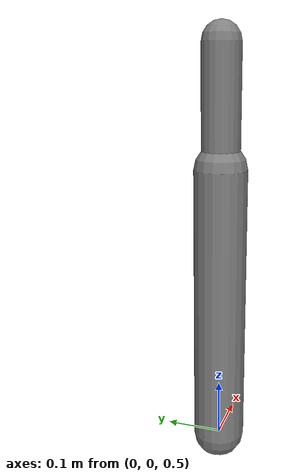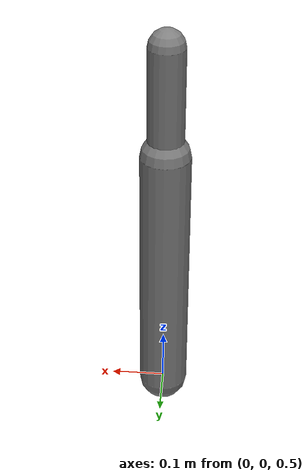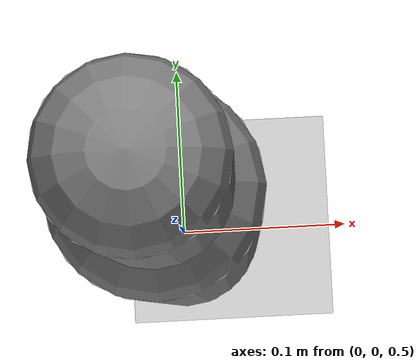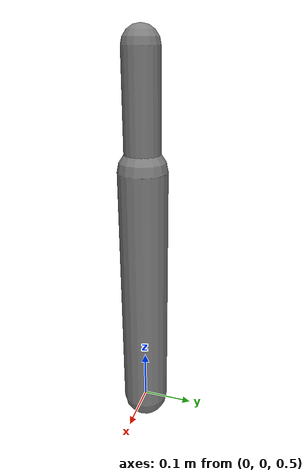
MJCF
<?xml version='1.0' encoding='UTF-8'?>
<mujoco model="RobotModel">
  <option gravity="0 0 -9.81" timestep="0.002" solver="CG" iterations="500" integrator="Euler"/>
  <worldbody>
    <geom name="Floor" type="plane" size="10 10 0.1" pos="0 0 0" rgba="0.8 0.8 0.8 1"/>
    <body name="Limb0" pos="0 0 0.5">
      <geom type="capsule" fromto="0 0 0 0 0 0.5" size="0.04612899392256878" density="1000" contype="0" conaffinity="0"/>
      <body name="Limb0_d05bc1c6" pos="0 0 0.5">
        <geom type="capsule" fromto="0 0 0 0 0 0.20560421072034749" size="0.033316162204180766" density="800" contype="0" conaffinity="0"/>
        <joint name="Joint_Limb0_Limb0_d05bc1c6_0" type="hinge" axis="0 1 0" range="-60 60"/>
      </body>
      <body name="Limb1_d05bc1c6" pos="0 0 0.5">
        <geom type="capsule" fromto="0 0 0 0 0 0.157119370012917" size="0.02701599621236682" density="800" contype="0" conaffinity="0"/>
        <joint name="Joint_Limb0_Limb1_d05bc1c6_0" type="hinge" axis="0 1 0" range="-45 45"/>
      </body>
    </body>
  </worldbody>
  <actuator>
    <position name="position_Actuator_Joint_Limb0_Limb0_d05bc1c6_0" joint="Joint_Limb0_Limb0_d05bc1c6_0" gear="1.0"/>
    <position name="position_Actuator_Joint_Limb0_Limb1_d05bc1c6_0" joint="Joint_Limb0_Limb1_d05bc1c6_0" gear="1.0"/>
  </actuator>
</mujoco>
